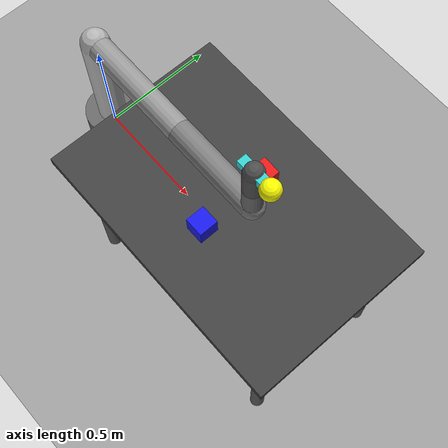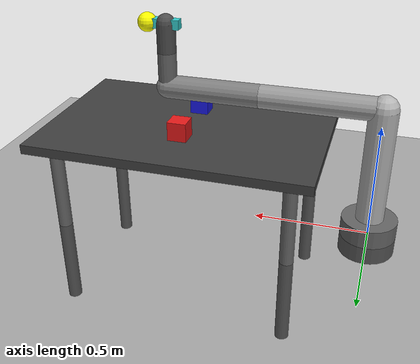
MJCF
<mujoco model="perception_table_scene">
  <compiler angle="radian" meshdir="."/>
  <option timestep="0.01" gravity="0 0 -9.81"/>

  <asset>
    <texture name="grid" type="2d" builtin="checker" width="512" height="512" rgb1="0.2 0.2 0.2" rgb2="0.3 0.3 0.3"/>
    <material name="table_mat" texture="grid" texrepeat="8 8" reflectance="0.1"/>
  </asset>

  <worldbody>
    <light diffuse="0.8 0.8 0.8" pos="1.5 1.0 2.5" dir="-1 -1 -2"/>
    <light diffuse="0.5 0.5 0.5" pos="-1.0 -1.0 2.0" dir="1 1 -2"/>
    <geom name="floor" type="plane" size="2 2 0.1" rgba="0.15 0.15 0.15 1"/>

    <!-- Table -->
    <body name="table" pos="0.8 0 0.4">
      <geom name="table_top" type="box" size="0.6 0.4 0.02" pos="0 0 0" material="table_mat"/>
      <geom name="table_leg1" type="cylinder" size="0.03 0.4" pos="-0.5 -0.3 -0.4" rgba="0.4 0.4 0.4 1"/>
      <geom name="table_leg2" type="cylinder" size="0.03 0.4" pos="0.5 -0.3 -0.4" rgba="0.4 0.4 0.4 1"/>
      <geom name="table_leg3" type="cylinder" size="0.03 0.4" pos="-0.5 0.3 -0.4" rgba="0.4 0.4 0.4 1"/>
      <geom name="table_leg4" type="cylinder" size="0.03 0.4" pos="0.5 0.3 -0.4" rgba="0.4 0.4 0.4 1"/>
    </body>

    <!-- Red block to be manipulated -->
    <body name="red_block" pos="0.8 0.15 0.46">
      <freejoint/>
      <geom name="red_block_geom" type="box" size="0.04 0.04 0.04" rgba="0.9 0.1 0.1 1" mass="0.1"/>
    </body>

    <!-- Blue block as distractor/reference -->
    <body name="blue_block" pos="0.8 -0.15 0.46">
      <freejoint/>
      <geom name="blue_block_geom" type="box" size="0.04 0.04 0.04" rgba="0.1 0.1 0.9 1" mass="0.1"/>
    </body>

    <!-- 6-DOF arm mounted at the side of the table -->
    <body name="arm_base" pos="0 0 0">
      <geom type="cylinder" size="0.12 0.08" rgba="0.4 0.4 0.4 1" euler="0 0 0"/>
      <body name="link1" pos="0 0 0.08">
        <joint name="joint1" type="hinge" axis="0 0 1" range="-3.14 3.14" damping="0.5"/>
        <geom type="capsule" fromto="0 0 0 0 0 0.5" size="0.06" rgba="0.7 0.7 0.7 1"/>
        <body name="link2" pos="0 0 0.5">
          <joint name="joint2" type="hinge" axis="0 1 0" range="-1.57 1.57" damping="0.5"/>
          <geom type="capsule" fromto="0 0 0 0.5 0 0" size="0.05" rgba="0.6 0.6 0.6 1"/>
          <body name="link3" pos="0.5 0 0">
            <joint name="joint3" type="hinge" axis="0 1 0" range="-1.57 1.57" damping="0.5"/>
            <geom type="capsule" fromto="0 0 0 0.4 0 0" size="0.05" rgba="0.5 0.5 0.5 1"/>
            <body name="link4" pos="0.4 0 0">
              <joint name="joint4" type="hinge" axis="1 0 0" range="-3.14 3.14" damping="0.2"/>
              <geom type="capsule" fromto="0 0 0 0 0 0.15" size="0.04" rgba="0.4 0.4 0.4 1"/>
              <body name="link5" pos="0 0 0.15">
                <joint name="joint5" type="hinge" axis="0 1 0" range="-1.57 1.57" damping="0.2"/>
                <geom type="capsule" fromto="0 0 0 0 0 0.12" size="0.04" rgba="0.3 0.3 0.3 1"/>
                <body name="link6" pos="0 0 0.12">
                  <joint name="joint6" type="hinge" axis="0 0 1" range="-3.14 3.14" damping="0.2"/>
                  <geom type="box" size="0.06 0.02 0.02" rgba="0.2 0.8 0.8 1"/>
                  <site name="ee" pos="0.08 0 0" size="0.04" rgba="1 1 0 1"/>
                </body>
              </body>
            </body>
          </body>
        </body>
      </body>
    </body>
  </worldbody>

  <actuator>
    <position name="act_joint1" joint="joint1" kp="100" ctrlrange="-3.14 3.14"/>
    <position name="act_joint2" joint="joint2" kp="100" ctrlrange="-1.57 1.57"/>
    <position name="act_joint3" joint="joint3" kp="80" ctrlrange="-1.57 1.57"/>
    <position name="act_joint4" joint="joint4" kp="30" ctrlrange="-3.14 3.14"/>
    <position name="act_joint5" joint="joint5" kp="30" ctrlrange="-1.57 1.57"/>
    <position name="act_joint6" joint="joint6" kp="10" ctrlrange="-3.14 3.14"/>
  </actuator>
</mujoco>
